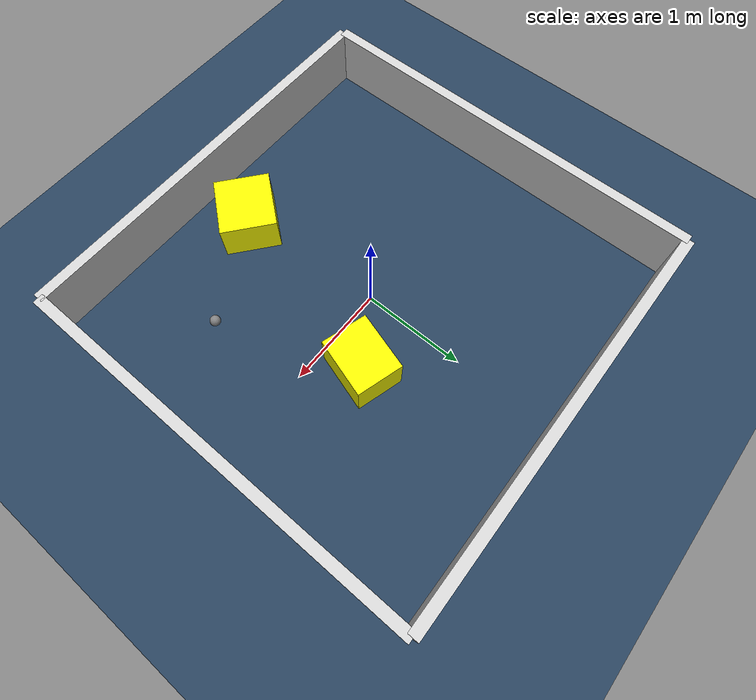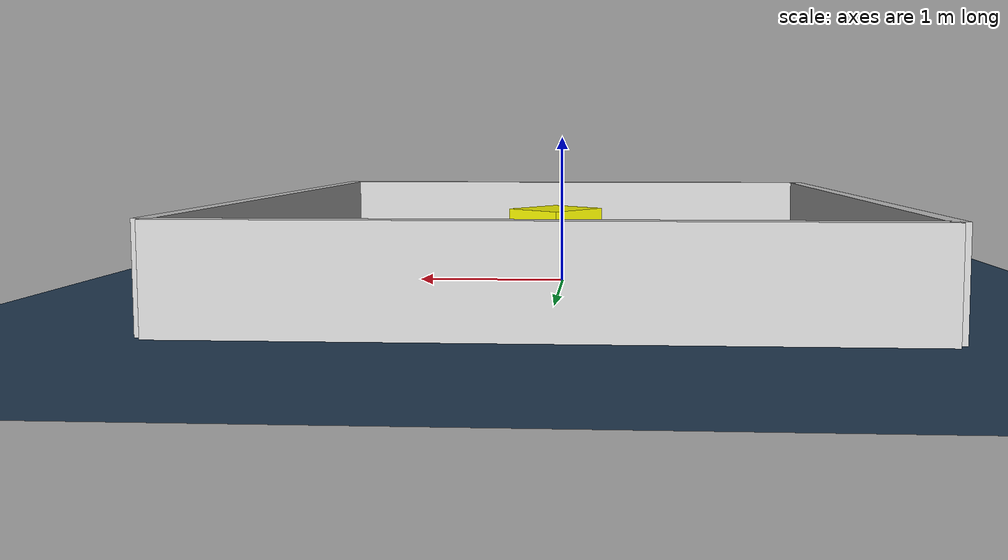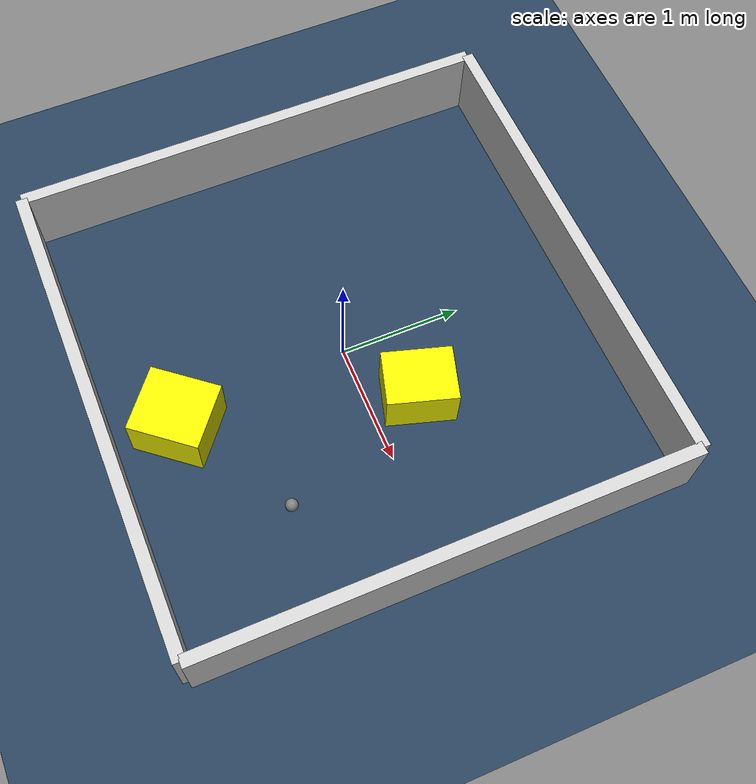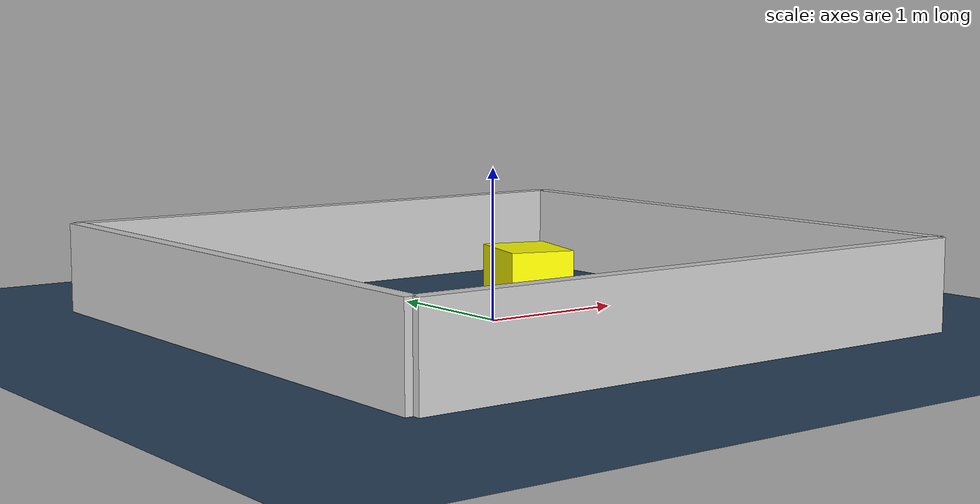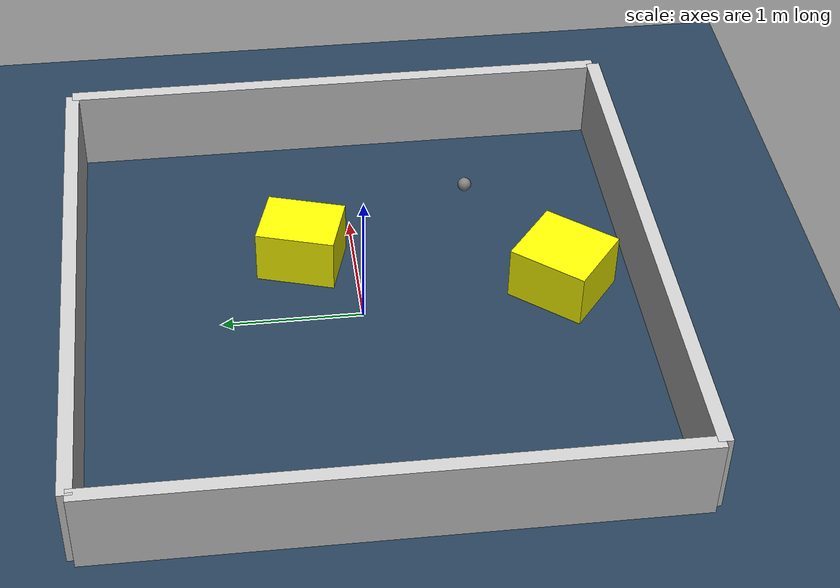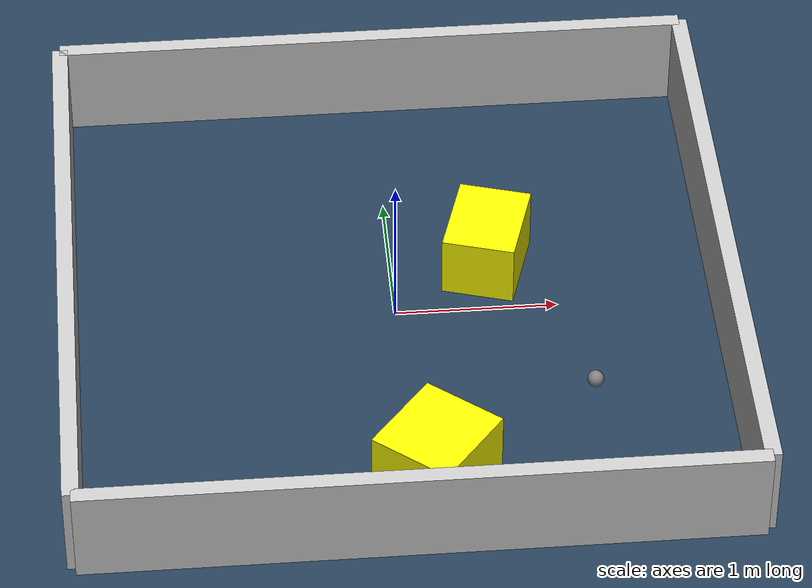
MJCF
<?xml version="1.0" ?>
<mujoco model="generated_environment">
  <option timestep="0.01" integrator="RK4" cone="elliptic"/>
  <default>
    <geom density="1"/>
  </default>
  <asset>
    <texture builtin="gradient" height="3072" rgb1="0.3 0.5 0.7" rgb2="0 0 0" type="skybox" width="512"/>
    <texture builtin="checker" height="300" mark="edge" markrgb="0.8 0.8 0.8" name="groundplane" rgb1="0.2 0.3 0.4" rgb2="0.1 0.2 0.3" type="2d" width="300"/>
    <material name="groundplane" reflectance="0.2" texrepeat="5 5" texture="groundplane" texuniform="true"/>
    <material name="robot" rgba="0.0 1.0 0.0 1"/>
  </asset>
  <worldbody>
    <light dir="0 0 -1" directional="true" pos="0 0 1.5"/>
    <geom condim="4" friction="1.0 0.005 0.001" material="groundplane" name="floor" size="0 0 0.05" type="plane"/>
    <body name="walls">
      <geom name="wall_1" condim="4" pos="-2.0 0.0 0.3" rgba="0.800000011920929 0.800000011920929 0.800000011920929 1.0" size="0.05 2.0 0.3" type="box"/>
      <geom name="wall_2" condim="4" pos="2.0 0.0 0.3" rgba="0.800000011920929 0.800000011920929 0.800000011920929 1.0" size="0.05 2.0 0.3" type="box"/>
      <geom name="wall_3" condim="4" pos="0.0 -2.0 0.3" rgba="0.800000011920929 0.800000011920929 0.800000011920929 1.0" size="2.0 0.05 0.3" type="box"/>
      <geom name="wall_4" condim="4" pos="0.0 2.0 0.3" rgba="0.800000011920929 0.800000011920929 0.800000011920929 1.0" size="2.0 0.05 0.3" type="box"/>
    </body>
    <body name="robot">
      <joint name="joint_x" type="slide" pos="0 0 0" axis="1 0 0"/>
      <joint name="joint_y" type="slide" pos="0 0 0" axis="0 1 0"/>
      <geom name="robot" type="sphere" pos="1.1272457995957876 -0.8793020435378819 0.2" size="0.05" mass="5." friction="1.0 0.005 0.0001" condim="4"/>
      <site name="sensor_ball"/>
    </body>
    <body name="obstacle_1_movable">
      <geom name="obstacle_1_movable" condim="4" pos="0.12918472998929165 -1.4363429848368754 0.2" euler="0 0 230.94799746402322" friction="1.0 0.005 0.001" rgba="1 1 0 1" size="0.2894418717714316 0.2673224349668294 0.2" type="box" mass="0.1"/>
      <joint type="free"/>
    </body>
    <body name="obstacle_2_movable">
      <geom name="obstacle_2_movable" condim="4" pos="0.5974410368405516 0.38896023323559925 0.2" euler="0 0 163.29013841587283" friction="1.0 0.005 0.001" rgba="1 1 0 1" size="0.2243465112470481 0.2820507510826916 0.2" type="box" mass="0.1"/>
      <joint type="free"/>
    </body>
  </worldbody>
  <actuator>
    <motor name="actuator_x" joint="joint_x" gear="1" ctrlrange="-1 1"/>
    <motor name="actuator_y" joint="joint_y" gear="1" ctrlrange="-1 1"/>
  </actuator>
</mujoco>
